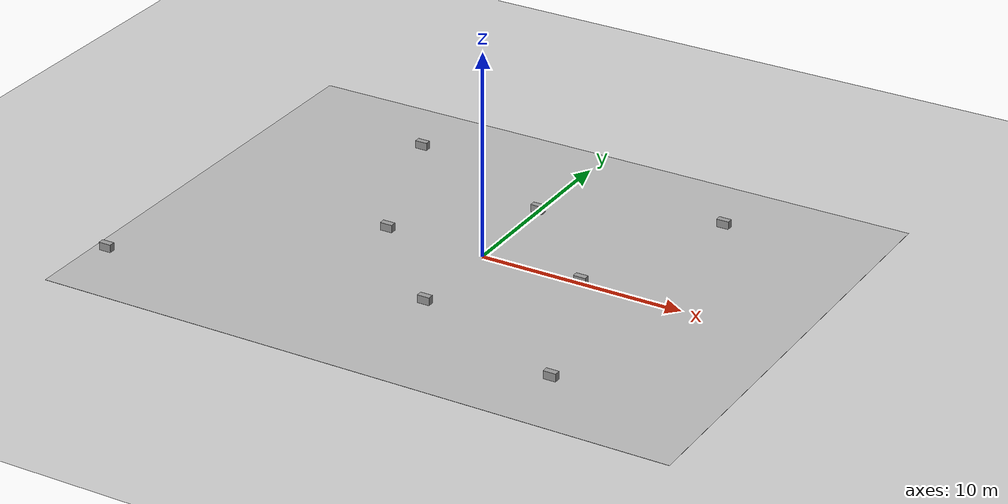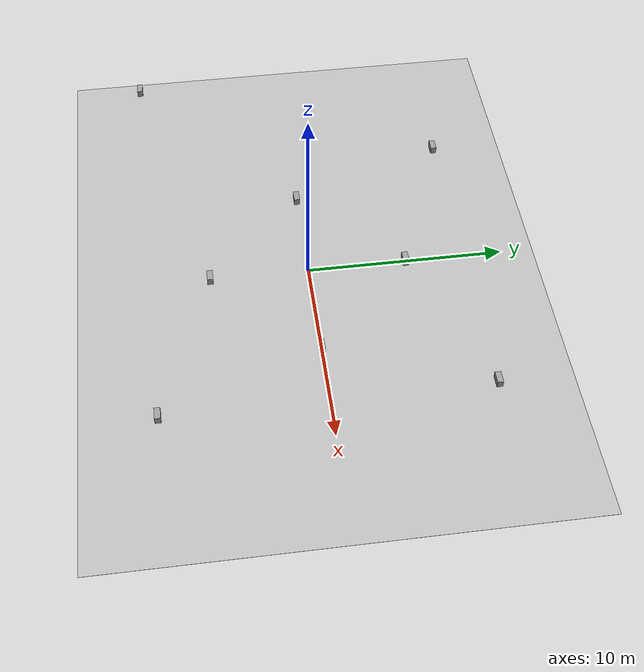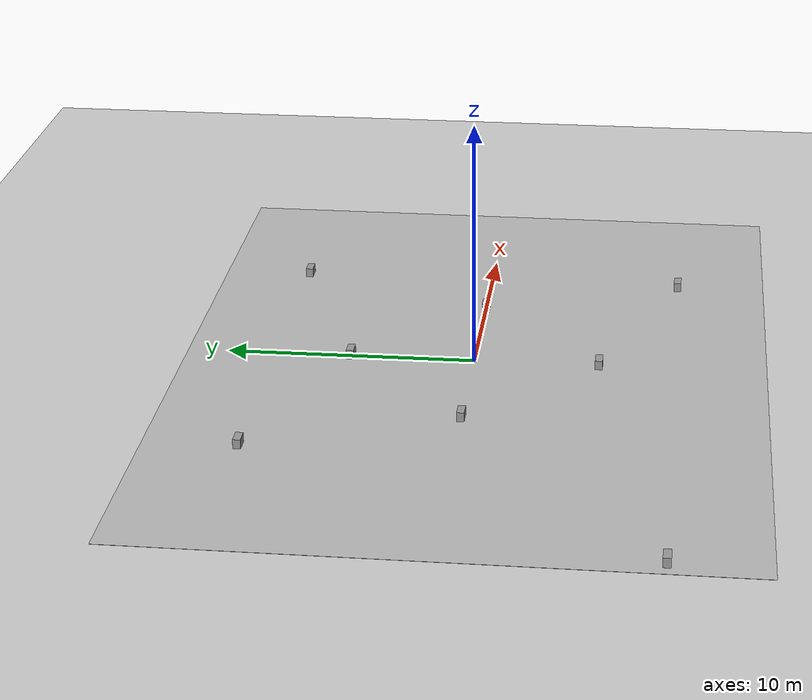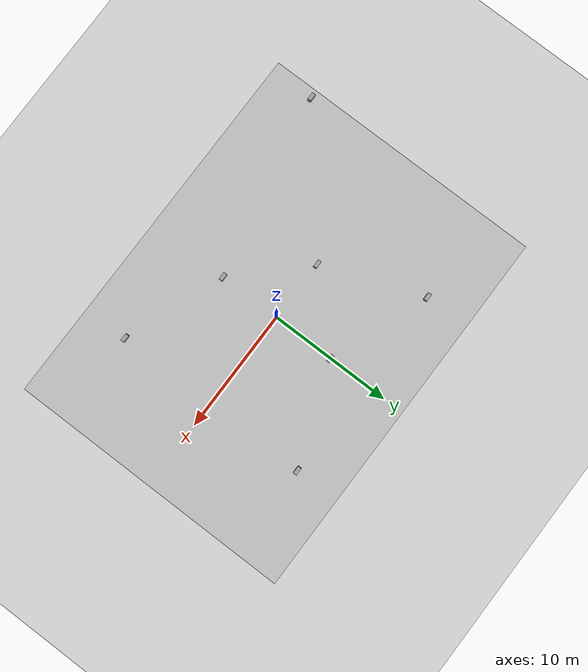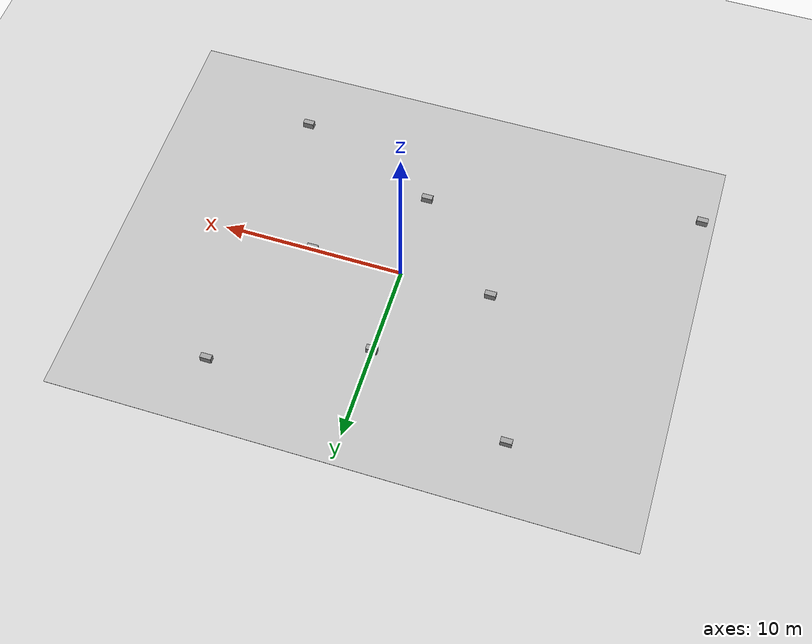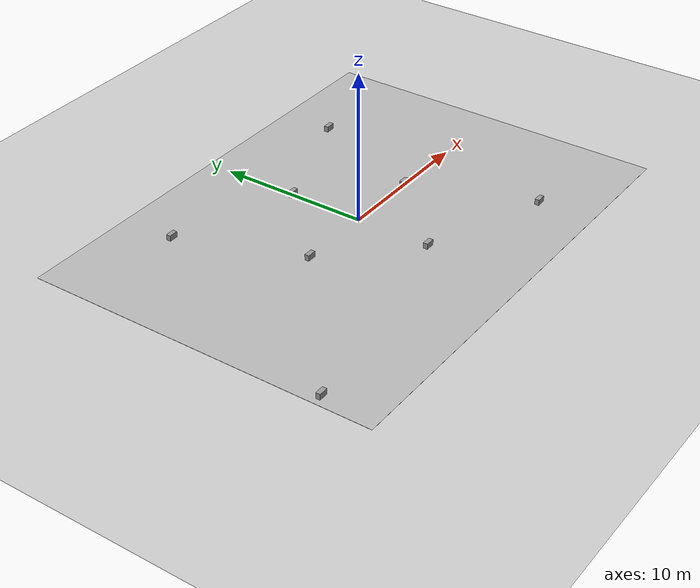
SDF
<sdf version="1.6">
 <world name="default">
  <scene><shadows>0</shadows><ambient>0.4 0.4 0.4 1</ambient><background>0.7 0.7 0.7 1</background></scene>
  <light name="sun" type="directional">
   <cast_shadows>0</cast_shadows>
   <pose>0 0 5 0 -0 0</pose>
   <diffuse>0.8 0.8 0.8 1</diffuse>
   <specular>0.1 0.1 0.1 1</specular>
   <attenuation>
    <range>1000</range>
    <constant>0.9</constant>
    <linear>0.01</linear>
    <quadratic>0.001</quadratic>
   </attenuation>
   <direction>-0.5 0.5 -1</direction>
  </light>
  <physics name="default_physics" default="0" type="ode">
   <max_step_size>0.001</max_step_size>
   <real_time_factor>1</real_time_factor>
   <real_time_update_rate>1000</real_time_update_rate>
  </physics>
  <scene><ambient>0.4 0.4 0.4 1</ambient><background>0.7 0.7 0.7 1</background><shadows>1</shadows></scene>
  <spherical_coordinates>
   <surface_model>EARTH_WGS84</surface_model>
   <latitude_deg>0</latitude_deg>
   <longitude_deg>0</longitude_deg>
   <elevation>0</elevation>
   <heading_deg>0</heading_deg>
  </spherical_coordinates>
  <model name="ground_plane">
   <static>1</static>
   <link name="link">
    <collision name="collision">
     <geometry><plane><normal>0 0 1</normal><size>100 100</size></plane></geometry>
     <surface><friction><ode><mu>1</mu><mu2>1</mu2></ode></friction></surface>
    </collision>
    <visual name="visual">
     <cast_shadows>0</cast_shadows>
     <geometry><plane><normal>0 0 1</normal><size>100 100</size></plane></geometry>
     <material>
      <script><uri>file://media/materials/scripts/gazebo.material</uri><name>Gazebo/Pedestrian</name></script>
     </material>
    </visual>
    <velocity_decay><linear>0</linear><angular>0</angular></velocity_decay>
   </link>
  </model>
  <model name="table_1">
   <link name="Wall">
    <pose>0 0 0.1985 0 -0 0</pose>
    <inertial>
     <mass>5</mass>
     <inertia><ixx>0.1022</ixx><iyy>0.2197</iyy><izz>0.1905</izz><ixy>0</ixy><ixz>0</ixz><iyz>0</iyz></inertia>
    </inertial>
    <collision name="Wall_Collision"><geometry><box><size>0.608 0.296 0.397</size></box></geometry></collision>
    <visual name="Wall_Visual">
     <geometry><box><size>0.608 0.296 0.397</size></box></geometry>
     <material>
      <script><uri>file://media/materials/scripts/gazebo.material</uri><name>Gazebo/Grey</name></script>
      <ambient>1 1 1 1</ambient>
     </material>
    </visual>
   </link>
   <static>1</static>
   <pose>-14.8633 -8 0 0 -0 0</pose>
  </model>
  <model name="table_2">
   <link name="Wall">
    <pose>0 0 0.1985 0 -0 0</pose>
    <inertial>
     <mass>5</mass>
     <inertia><ixx>0.1022</ixx><iyy>0.2197</iyy><izz>0.1905</izz><ixy>0</ixy><ixz>0</ixz><iyz>0</iyz></inertia>
    </inertial>
    <collision name="Wall_Collision"><geometry><box><size>0.608 0.296 0.397</size></box></geometry></collision>
    <visual name="Wall_Visual">
     <geometry><box><size>0.608 0.296 0.397</size></box></geometry>
     <material>
      <script><uri>file://media/materials/scripts/gazebo.material</uri><name>Gazebo/Grey</name></script>
      <ambient>1 1 1 1</ambient>
     </material>
    </visual>
   </link>
   <static>1</static>
   <pose>8 -8 0 0 -0 0</pose>
  </model>
  <model name="table_3">
   <link name="Wall">
    <pose>0 0 0.1985 0 -0 0</pose>
    <inertial>
     <mass>5</mass>
     <inertia><ixx>0.1022</ixx><iyy>0.2197</iyy><izz>0.1905</izz><ixy>0</ixy><ixz>0</ixz><iyz>0</iyz></inertia>
    </inertial>
    <collision name="Wall_Collision"><geometry><box><size>0.608 0.296 0.397</size></box></geometry></collision>
    <visual name="Wall_Visual">
     <geometry><box><size>0.608 0.296 0.397</size></box></geometry>
     <material>
      <script><uri>file://media/materials/scripts/gazebo.material</uri><name>Gazebo/Grey</name></script>
      <ambient>1 1 1 1</ambient>
     </material>
    </visual>
   </link>
   <static>1</static>
   <pose>0 5 0 0 -0 0</pose>
  </model>
  <model name="table_4">
   <link name="Wall">
    <pose>0 0 0.1985 0 -0 0</pose>
    <inertial>
     <mass>5</mass>
     <inertia><ixx>0.1022</ixx><iyy>0.2197</iyy><izz>0.1905</izz><ixy>0</ixy><ixz>0</ixz><iyz>0</iyz></inertia>
    </inertial>
    <collision name="Wall_Collision"><geometry><box><size>0.608 0.296 0.397</size></box></geometry></collision>
    <visual name="Wall_Visual">
     <geometry><box><size>0.608 0.296 0.397</size></box></geometry>
     <material>
      <script><uri>file://media/materials/scripts/gazebo.material</uri><name>Gazebo/Grey</name></script>
      <ambient>1 1 1 1</ambient>
     </material>
    </visual>
   </link>
   <static>1</static>
   <pose>-5 0 0 0 -0 0</pose>
  </model>
  <model name="table_5">
   <link name="Wall">
    <pose>0 0 0.1985 0 -0 0</pose>
    <inertial>
     <mass>5</mass>
     <inertia><ixx>0.1022</ixx><iyy>0.2197</iyy><izz>0.1905</izz><ixy>0</ixy><ixz>0</ixz><iyz>0</iyz></inertia>
    </inertial>
    <collision name="Wall_Collision"><geometry><box><size>0.608 0.296 0.397</size></box></geometry></collision>
    <visual name="Wall_Visual">
     <geometry><box><size>0.608 0.296 0.397</size></box></geometry>
     <material>
      <script><uri>file://media/materials/scripts/gazebo.material</uri><name>Gazebo/Grey</name></script>
      <ambient>1 1 1 1</ambient>
     </material>
    </visual>
   </link>
   <static>1</static>
   <pose>0 -5 0 0 -0 0</pose>
  </model>
  <model name="table_6">
   <link name="Wall">
    <pose>0 0 0.1985 0 -0 0</pose>
    <inertial>
     <mass>5</mass>
     <inertia><ixx>0.1022</ixx><iyy>0.2197</iyy><izz>0.1905</izz><ixy>0</ixy><ixz>0</ixz><iyz>0</iyz></inertia>
    </inertial>
    <collision name="Wall_Collision"><geometry><box><size>0.608 0.296 0.397</size></box></geometry></collision>
    <visual name="Wall_Visual">
     <geometry><box><size>0.608 0.296 0.397</size></box></geometry>
     <material>
      <script><uri>file://media/materials/scripts/gazebo.material</uri><name>Gazebo/Grey</name></script>
      <ambient>1 1 1 1</ambient>
     </material>
    </visual>
   </link>
   <static>1</static>
   <pose>5 0 0 0 -0 0</pose>
  </model>
  <model name="table_7">
   <link name="Wall">
    <pose>0 0 0.1985 0 -0 0</pose>
    <inertial>
     <mass>5</mass>
     <inertia><ixx>0.1022</ixx><iyy>0.2197</iyy><izz>0.1905</izz><ixy>0</ixy><ixz>0</ixz><iyz>0</iyz></inertia>
    </inertial>
    <collision name="Wall_Collision"><geometry><box><size>0.608 0.296 0.397</size></box></geometry></collision>
    <visual name="Wall_Visual">
     <geometry><box><size>0.608 0.296 0.397</size></box></geometry>
     <material>
      <script><uri>file://media/materials/scripts/gazebo.material</uri><name>Gazebo/Grey</name></script>
      <ambient>1 1 1 1</ambient>
     </material>
    </visual>
   </link>
   <static>1</static>
   <pose>8 8 0 0 -0 0</pose>
  </model>
  <model name="table_8">
   <link name="Wall">
    <pose>0 0 0.1985 0 -0 0</pose>
    <inertial>
     <mass>5</mass>
     <inertia><ixx>0.1022</ixx><iyy>0.2197</iyy><izz>0.1905</izz><ixy>0</ixy><ixz>0</ixz><iyz>0</iyz></inertia>
    </inertial>
    <collision name="Wall_Collision"><geometry><box><size>0.608 0.296 0.397</size></box></geometry></collision>
    <visual name="Wall_Visual">
     <geometry><box><size>0.608 0.296 0.397</size></box></geometry>
     <material>
      <script><uri>file://media/materials/scripts/gazebo.material</uri><name>Gazebo/Grey</name></script>
      <ambient>1 1 1 1</ambient>
     </material>
    </visual>
   </link>
   <static>1</static>
   <pose>-8 8 0 0 -0 0</pose>
  </model>
  <gravity>0 0 -9.8</gravity>
  <magnetic_field>6e-06 2.3e-05 -4.2e-05</magnetic_field>
  <atmosphere type="adiabatic"/>
  <model name="Floor">
   <link name="main">
    <pose>0 0 0.01 0 -0 0</pose>
    <collision name="main_Collision"><geometry><box><size>40 40 0.01</size></box></geometry></collision>
    <visual name="main_Visual">
     <geometry><box><size>31.0887 23.317 0.01</size></box></geometry>
     <material>
      <script>
       <uri>model://Floor/materials/scripts</uri>
       <uri>model://Floor/materials/textures</uri>
       <name>floor</name>
      </script>
     </material>
    </visual>
   </link>
   <static>1</static>
   <pose>-0.018284 -0.004048 0 0 -0 0</pose>
  </model>
  <audio><device>default</device></audio>
 </world>
</sdf>
